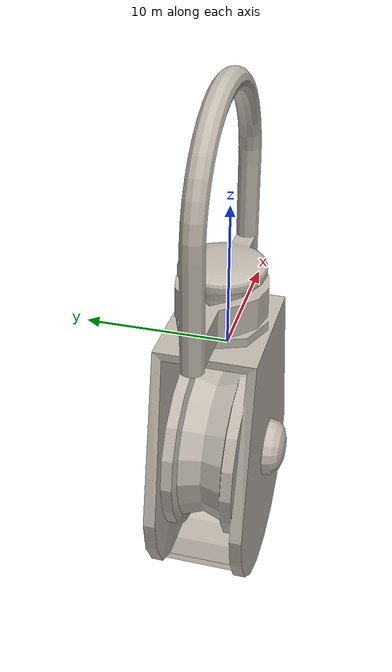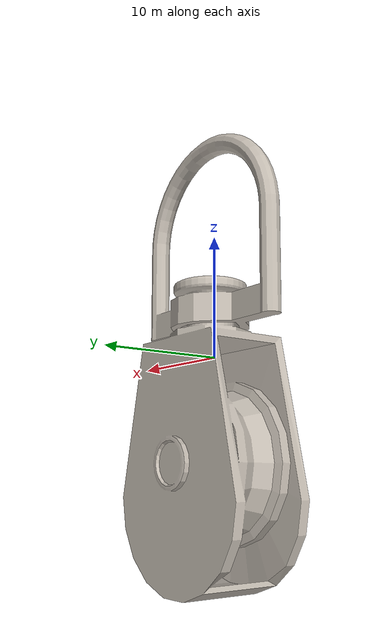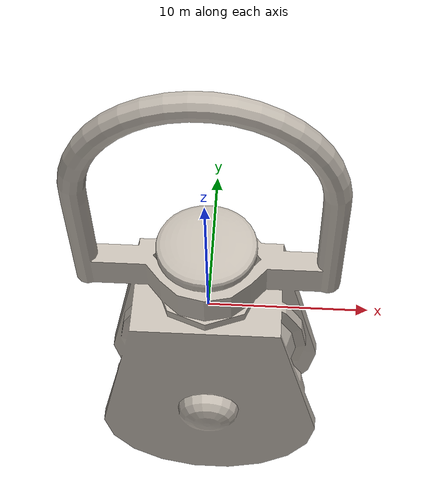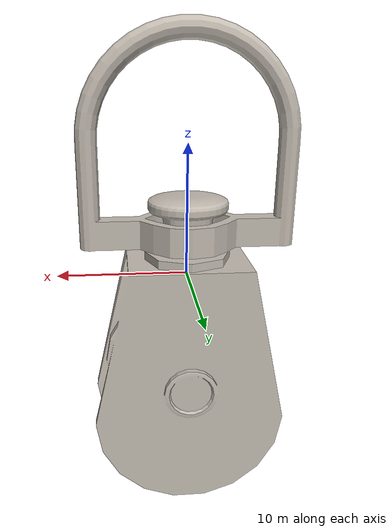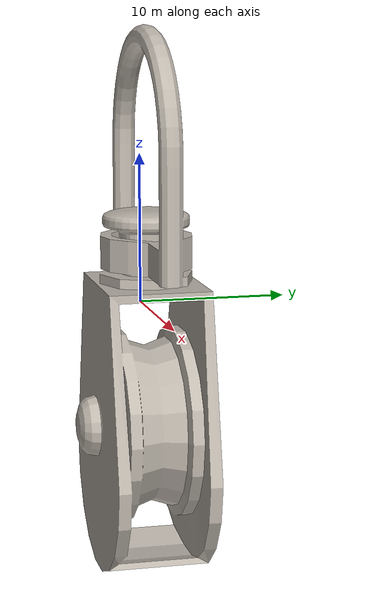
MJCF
<?xml version="1.0" encoding="utf-8"?>
<mujoco model="Pulley">
  <default>
    <default class="visual">
      <geom group="2" type="mesh" contype="0" conaffinity="0"/>
    </default>
    <default class="collision">
      <geom group="3" type="mesh"/>
    </default>
  </default>
  <asset>
    <texture type="2d" name="Pulley_BaseColor" file="Pulley/Pulley_BaseColor.png"/>
    <material name="material_0" texture="Pulley_BaseColor" specular="1.0" shininess="0.5"/>
    <mesh file="Pulley/Pulley.obj" name="Pulley"/>
    <mesh file="Pulley/Pulley_collision_0.obj" name="Pulley_collision_0"/>
    <mesh file="Pulley/Pulley_collision_1.obj" name="Pulley_collision_1"/>
    <mesh file="Pulley/Pulley_collision_2.obj" name="Pulley_collision_2"/>
    <mesh file="Pulley/Pulley_collision_3.obj" name="Pulley_collision_3"/>
    <mesh file="Pulley/Pulley_collision_4.obj" name="Pulley_collision_4"/>
    <mesh file="Pulley/Pulley_collision_5.obj" name="Pulley_collision_5"/>
    <mesh file="Pulley/Pulley_collision_6.obj" name="Pulley_collision_6"/>
    <mesh file="Pulley/Pulley_collision_7.obj" name="Pulley_collision_7"/>
    <mesh file="Pulley/Pulley_collision_8.obj" name="Pulley_collision_8"/>
    <mesh file="Pulley/Pulley_collision_9.obj" name="Pulley_collision_9"/>
    <mesh file="Pulley/Pulley_collision_10.obj" name="Pulley_collision_10"/>
    <mesh file="Pulley/Pulley_collision_11.obj" name="Pulley_collision_11"/>
    <mesh file="Pulley/Pulley_collision_12.obj" name="Pulley_collision_12"/>
    <mesh file="Pulley/Pulley_collision_13.obj" name="Pulley_collision_13"/>
    <mesh file="Pulley/Pulley_collision_14.obj" name="Pulley_collision_14"/>
    <mesh file="Pulley/Pulley_collision_15.obj" name="Pulley_collision_15"/>
    <mesh file="Pulley/Pulley_collision_16.obj" name="Pulley_collision_16"/>
    <mesh file="Pulley/Pulley_collision_17.obj" name="Pulley_collision_17"/>
    <mesh file="Pulley/Pulley_collision_18.obj" name="Pulley_collision_18"/>
    <mesh file="Pulley/Pulley_collision_19.obj" name="Pulley_collision_19"/>
    <mesh file="Pulley/Pulley_collision_20.obj" name="Pulley_collision_20"/>
    <mesh file="Pulley/Pulley_collision_21.obj" name="Pulley_collision_21"/>
    <mesh file="Pulley/Pulley_collision_22.obj" name="Pulley_collision_22"/>
  </asset>
  <worldbody>
    <body name="Pulley">
      <inertial mass="0.1" diaginertia="0.001 0.001 0.001" pos="0 0 0"/>
      <geom material="material_0" mesh="Pulley" class="visual"/>
      <geom mesh="Pulley_collision_0" rgba="0.9753029705575426 0.16634233009122867 0.4899156440574587 1" class="collision"/>
      <geom mesh="Pulley_collision_1" rgba="0.3948825999468041 0.9480282864442117 0.36134291818073694 1" class="collision"/>
      <geom mesh="Pulley_collision_2" rgba="0.16902573886960948 0.6394425864594492 0.6889535580863602 1" class="collision"/>
      <geom mesh="Pulley_collision_3" rgba="0.24882374232456805 0.47766318270084684 0.07887313635458837 1" class="collision"/>
      <geom mesh="Pulley_collision_4" rgba="0.6568228137124136 0.3301808291272724 0.9266199514590737 1" class="collision"/>
      <geom mesh="Pulley_collision_5" rgba="0.1666626514060996 0.8995508205856033 0.7029539255214192 1" class="collision"/>
      <geom mesh="Pulley_collision_6" rgba="0.6034921376406496 0.04600140815790288 0.09454643116053751 1" class="collision"/>
      <geom mesh="Pulley_collision_7" rgba="0.934152735745016 0.6568296146339031 0.05389728027672491 1" class="collision"/>
      <geom mesh="Pulley_collision_8" rgba="0.24484107409169686 0.8545104673730243 0.1615655753970937 1" class="collision"/>
      <geom mesh="Pulley_collision_9" rgba="0.45969032812242816 0.6279489181527358 0.49013724601607744 1" class="collision"/>
      <geom mesh="Pulley_collision_10" rgba="0.3833322215180929 0.23797232180459382 0.2702767004504625 1" class="collision"/>
      <geom mesh="Pulley_collision_11" rgba="0.594986897039734 0.9770034927576092 0.11438602122412822 1" class="collision"/>
      <geom mesh="Pulley_collision_12" rgba="0.4159191085195605 0.2853327879371823 0.4269324536968446 1" class="collision"/>
      <geom mesh="Pulley_collision_13" rgba="0.2662379033420905 0.8304964035388808 0.9901810741905033 1" class="collision"/>
      <geom mesh="Pulley_collision_14" rgba="0.05972671273661634 0.23339715076186351 0.6759278215244882 1" class="collision"/>
      <geom mesh="Pulley_collision_15" rgba="0.29036171944745726 0.606033902363878 0.0548018772398714 1" class="collision"/>
      <geom mesh="Pulley_collision_16" rgba="0.5169532925370849 0.5595608348632146 0.8636272839513816 1" class="collision"/>
      <geom mesh="Pulley_collision_17" rgba="0.09327968977586132 0.9104775219968911 0.8645625316339163 1" class="collision"/>
      <geom mesh="Pulley_collision_18" rgba="0.018648874903689272 0.9903014122885696 0.257045866024604 1" class="collision"/>
      <geom mesh="Pulley_collision_19" rgba="0.5057385137315471 0.45339068616235767 0.894820387270809 1" class="collision"/>
      <geom mesh="Pulley_collision_20" rgba="0.3450779071685983 0.5177656521689904 0.6669440365161373 1" class="collision"/>
      <geom mesh="Pulley_collision_21" rgba="0.8362723134473006 0.8759199600193258 0.2870280077953361 1" class="collision"/>
      <geom mesh="Pulley_collision_22" rgba="0.8896594389002981 0.6263992955905516 0.3836832151044136 1" class="collision"/>
    </body>
  </worldbody>
</mujoco>
